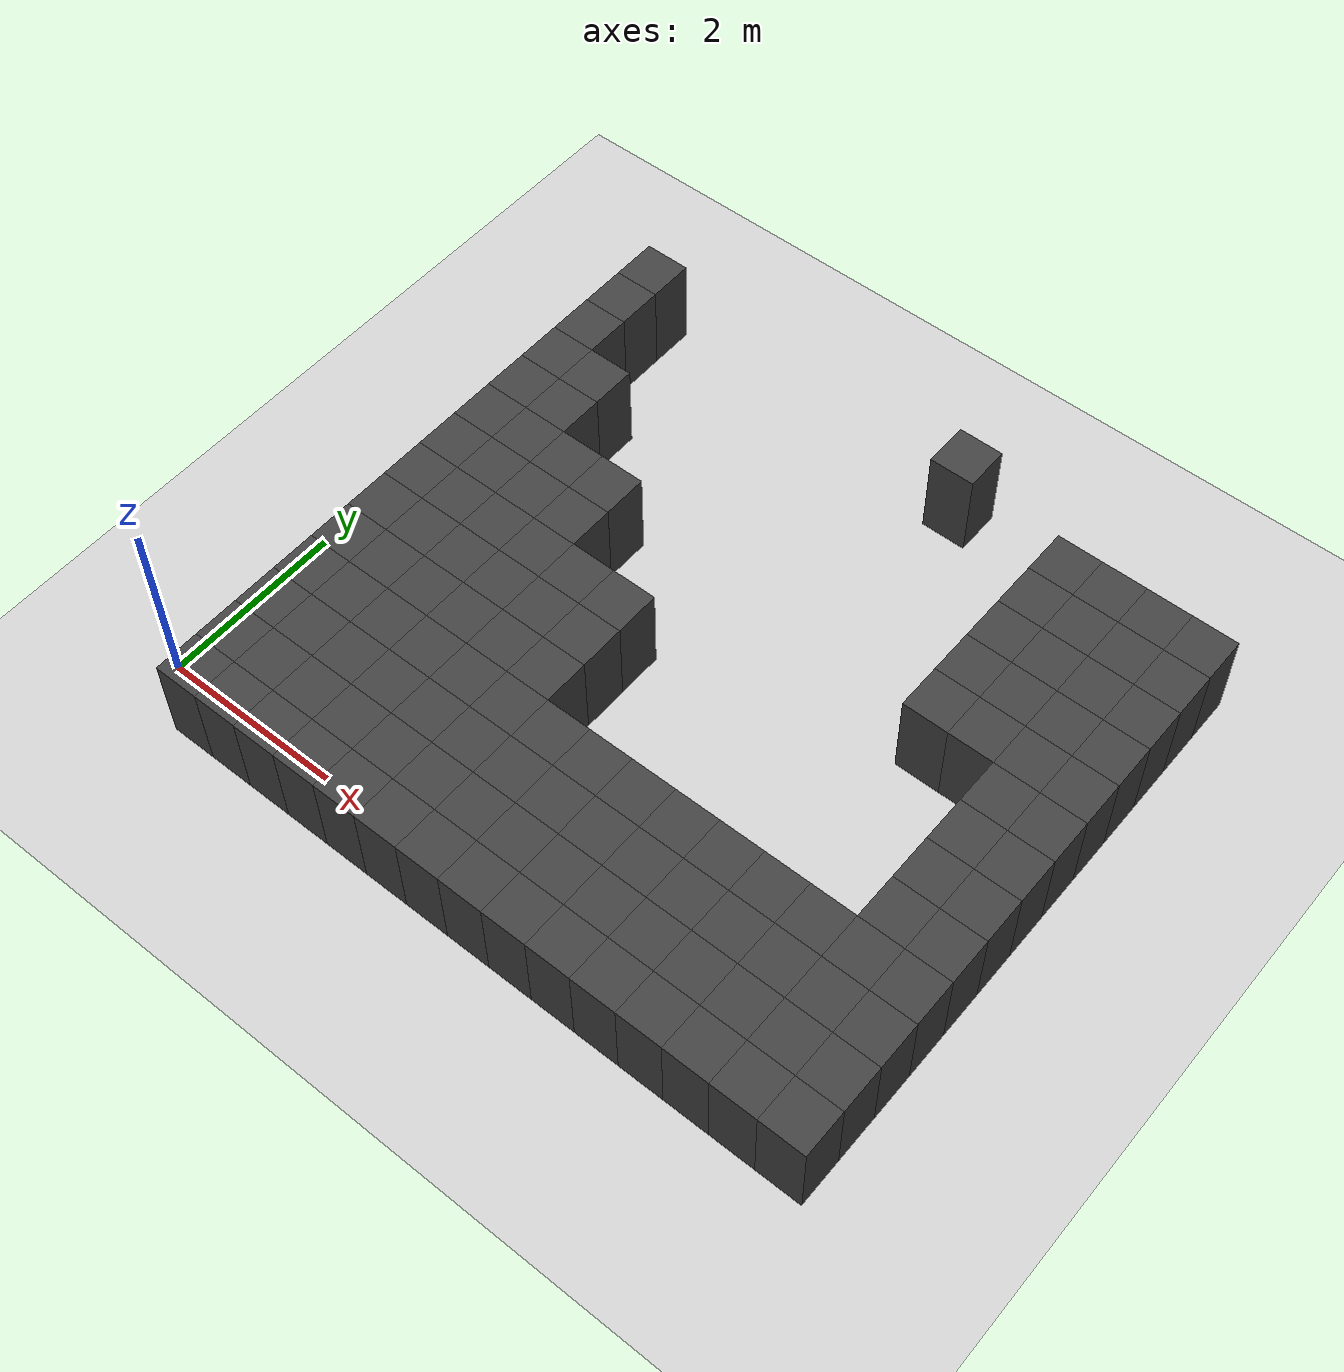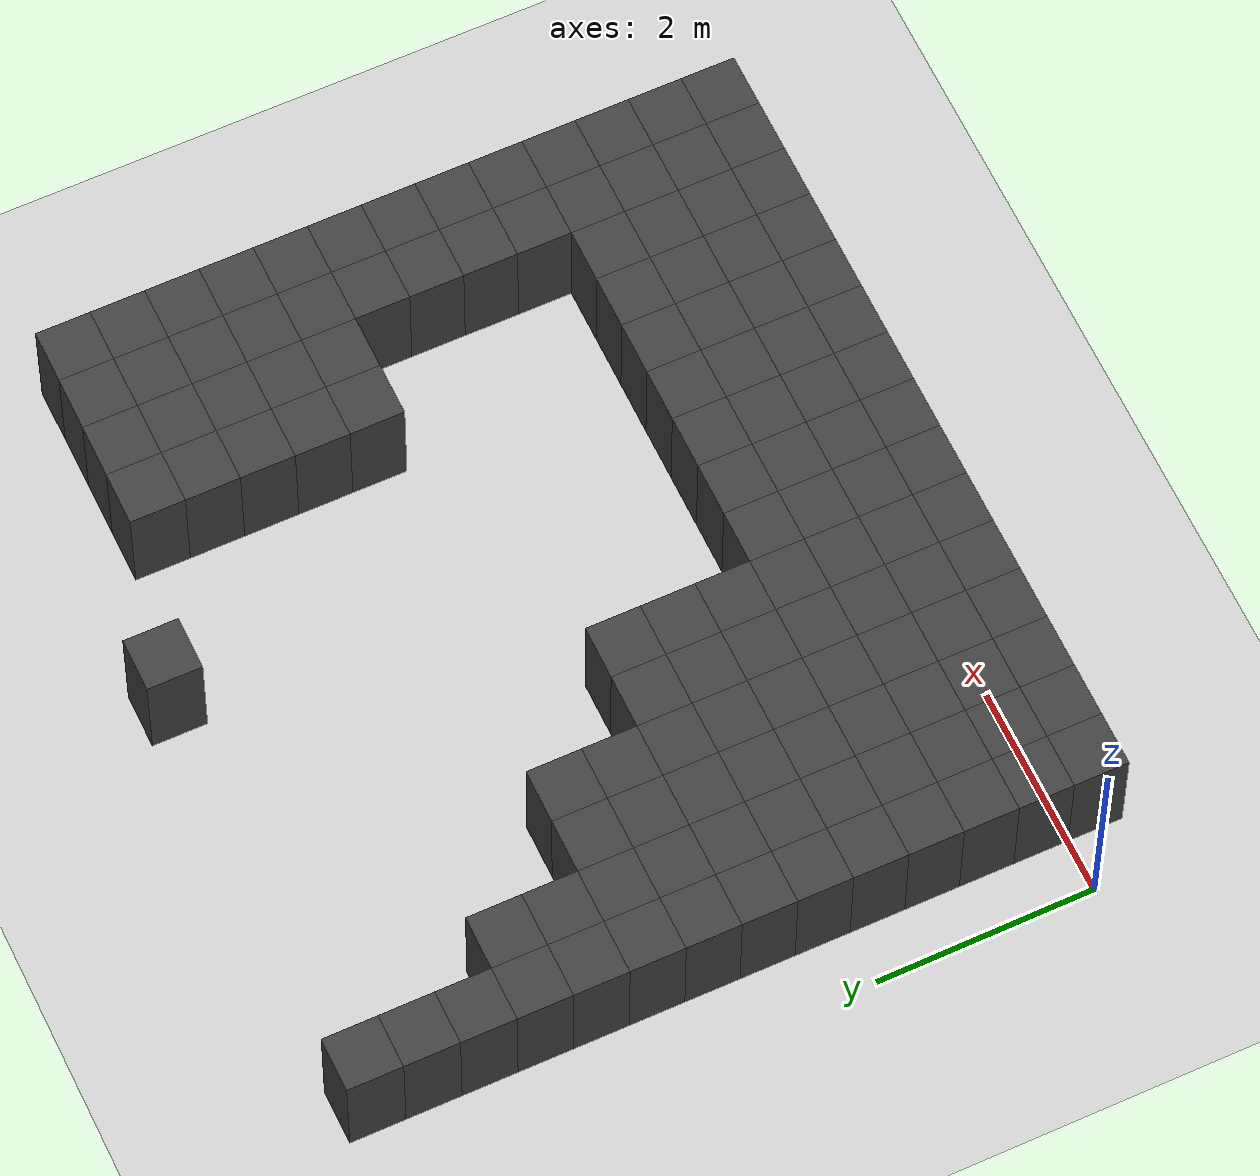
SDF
<sdf version="1.7">
 <world name="map_14510">
  <model name="ground_plane">
   <static>true</static>
   <link name="link">
    <collision name="collision">
     <geometry><plane><normal>0 0 1</normal><size>200 200</size></plane></geometry>
    </collision>
    <visual name="visual">
     <geometry><plane><normal>0 0 1</normal><size>200 200</size></plane></geometry>
     <material><ambient>0.8 0.8 0.8 1</ambient><diffuse>0.8 0.8 0.8 1</diffuse></material>
    </visual>
   </link>
  </model>
  <model name="maze_environment">
   <static>true</static>
   <link name="wall_411">
    <pose>0.750 6.250 0.500 0 0 0</pose>
    <collision name="col"><geometry><box><size>0.5 0.5 1.0</size></box></geometry></collision>
    <visual name="vis">
     <geometry><box><size>0.5 0.5 1.0</size></box></geometry>
     <material><ambient>0.15 0.15 0.15 1</ambient><diffuse>0.25 0.25 0.25 1</diffuse></material>
    </visual>
   </link>
   <link name="wall_412">
    <pose>4.750 6.250 0.500 0 0 0</pose>
    <collision name="col"><geometry><box><size>0.5 0.5 1.0</size></box></geometry></collision>
    <visual name="vis">
     <geometry><box><size>0.5 0.5 1.0</size></box></geometry>
     <material><ambient>0.15 0.15 0.15 1</ambient><diffuse>0.25 0.25 0.25 1</diffuse></material>
    </visual>
   </link>
   <link name="wall_437">
    <pose>0.750 5.750 0.500 0 0 0</pose>
    <collision name="col"><geometry><box><size>0.5 0.5 1.0</size></box></geometry></collision>
    <visual name="vis">
     <geometry><box><size>0.5 0.5 1.0</size></box></geometry>
     <material><ambient>0.15 0.15 0.15 1</ambient><diffuse>0.25 0.25 0.25 1</diffuse></material>
    </visual>
   </link>
   <link name="wall_438">
    <pose>6.250 5.750 0.500 0 0 0</pose>
    <collision name="col"><geometry><box><size>0.5 0.5 1.0</size></box></geometry></collision>
    <visual name="vis">
     <geometry><box><size>0.5 0.5 1.0</size></box></geometry>
     <material><ambient>0.15 0.15 0.15 1</ambient><diffuse>0.25 0.25 0.25 1</diffuse></material>
    </visual>
   </link>
   <link name="wall_439">
    <pose>6.750 5.750 0.500 0 0 0</pose>
    <collision name="col"><geometry><box><size>0.5 0.5 1.0</size></box></geometry></collision>
    <visual name="vis">
     <geometry><box><size>0.5 0.5 1.0</size></box></geometry>
     <material><ambient>0.15 0.15 0.15 1</ambient><diffuse>0.25 0.25 0.25 1</diffuse></material>
    </visual>
   </link>
   <link name="wall_440">
    <pose>7.250 5.750 0.500 0 0 0</pose>
    <collision name="col"><geometry><box><size>0.5 0.5 1.0</size></box></geometry></collision>
    <visual name="vis">
     <geometry><box><size>0.5 0.5 1.0</size></box></geometry>
     <material><ambient>0.15 0.15 0.15 1</ambient><diffuse>0.25 0.25 0.25 1</diffuse></material>
    </visual>
   </link>
   <link name="wall_441">
    <pose>7.750 5.750 0.500 0 0 0</pose>
    <collision name="col"><geometry><box><size>0.5 0.5 1.0</size></box></geometry></collision>
    <visual name="vis">
     <geometry><box><size>0.5 0.5 1.0</size></box></geometry>
     <material><ambient>0.15 0.15 0.15 1</ambient><diffuse>0.25 0.25 0.25 1</diffuse></material>
    </visual>
   </link>
   <link name="wall_470">
    <pose>0.750 5.250 0.500 0 0 0</pose>
    <collision name="col"><geometry><box><size>0.5 0.5 1.0</size></box></geometry></collision>
    <visual name="vis">
     <geometry><box><size>0.5 0.5 1.0</size></box></geometry>
     <material><ambient>0.15 0.15 0.15 1</ambient><diffuse>0.25 0.25 0.25 1</diffuse></material>
    </visual>
   </link>
   <link name="wall_471">
    <pose>6.250 5.250 0.500 0 0 0</pose>
    <collision name="col"><geometry><box><size>0.5 0.5 1.0</size></box></geometry></collision>
    <visual name="vis">
     <geometry><box><size>0.5 0.5 1.0</size></box></geometry>
     <material><ambient>0.15 0.15 0.15 1</ambient><diffuse>0.25 0.25 0.25 1</diffuse></material>
    </visual>
   </link>
   <link name="wall_472">
    <pose>6.750 5.250 0.500 0 0 0</pose>
    <collision name="col"><geometry><box><size>0.5 0.5 1.0</size></box></geometry></collision>
    <visual name="vis">
     <geometry><box><size>0.5 0.5 1.0</size></box></geometry>
     <material><ambient>0.15 0.15 0.15 1</ambient><diffuse>0.25 0.25 0.25 1</diffuse></material>
    </visual>
   </link>
   <link name="wall_473">
    <pose>7.250 5.250 0.500 0 0 0</pose>
    <collision name="col"><geometry><box><size>0.5 0.5 1.0</size></box></geometry></collision>
    <visual name="vis">
     <geometry><box><size>0.5 0.5 1.0</size></box></geometry>
     <material><ambient>0.15 0.15 0.15 1</ambient><diffuse>0.25 0.25 0.25 1</diffuse></material>
    </visual>
   </link>
   <link name="wall_474">
    <pose>7.750 5.250 0.500 0 0 0</pose>
    <collision name="col"><geometry><box><size>0.5 0.5 1.0</size></box></geometry></collision>
    <visual name="vis">
     <geometry><box><size>0.5 0.5 1.0</size></box></geometry>
     <material><ambient>0.15 0.15 0.15 1</ambient><diffuse>0.25 0.25 0.25 1</diffuse></material>
    </visual>
   </link>
   <link name="wall_503">
    <pose>0.750 4.750 0.500 0 0 0</pose>
    <collision name="col"><geometry><box><size>0.5 0.5 1.0</size></box></geometry></collision>
    <visual name="vis">
     <geometry><box><size>0.5 0.5 1.0</size></box></geometry>
     <material><ambient>0.15 0.15 0.15 1</ambient><diffuse>0.25 0.25 0.25 1</diffuse></material>
    </visual>
   </link>
   <link name="wall_504">
    <pose>1.250 4.750 0.500 0 0 0</pose>
    <collision name="col"><geometry><box><size>0.5 0.5 1.0</size></box></geometry></collision>
    <visual name="vis">
     <geometry><box><size>0.5 0.5 1.0</size></box></geometry>
     <material><ambient>0.15 0.15 0.15 1</ambient><diffuse>0.25 0.25 0.25 1</diffuse></material>
    </visual>
   </link>
   <link name="wall_505">
    <pose>6.250 4.750 0.500 0 0 0</pose>
    <collision name="col"><geometry><box><size>0.5 0.5 1.0</size></box></geometry></collision>
    <visual name="vis">
     <geometry><box><size>0.5 0.5 1.0</size></box></geometry>
     <material><ambient>0.15 0.15 0.15 1</ambient><diffuse>0.25 0.25 0.25 1</diffuse></material>
    </visual>
   </link>
   <link name="wall_506">
    <pose>6.750 4.750 0.500 0 0 0</pose>
    <collision name="col"><geometry><box><size>0.5 0.5 1.0</size></box></geometry></collision>
    <visual name="vis">
     <geometry><box><size>0.5 0.5 1.0</size></box></geometry>
     <material><ambient>0.15 0.15 0.15 1</ambient><diffuse>0.25 0.25 0.25 1</diffuse></material>
    </visual>
   </link>
   <link name="wall_507">
    <pose>7.250 4.750 0.500 0 0 0</pose>
    <collision name="col"><geometry><box><size>0.5 0.5 1.0</size></box></geometry></collision>
    <visual name="vis">
     <geometry><box><size>0.5 0.5 1.0</size></box></geometry>
     <material><ambient>0.15 0.15 0.15 1</ambient><diffuse>0.25 0.25 0.25 1</diffuse></material>
    </visual>
   </link>
   <link name="wall_508">
    <pose>7.750 4.750 0.500 0 0 0</pose>
    <collision name="col"><geometry><box><size>0.5 0.5 1.0</size></box></geometry></collision>
    <visual name="vis">
     <geometry><box><size>0.5 0.5 1.0</size></box></geometry>
     <material><ambient>0.15 0.15 0.15 1</ambient><diffuse>0.25 0.25 0.25 1</diffuse></material>
    </visual>
   </link>
   <link name="wall_537">
    <pose>0.750 4.250 0.500 0 0 0</pose>
    <collision name="col"><geometry><box><size>0.5 0.5 1.0</size></box></geometry></collision>
    <visual name="vis">
     <geometry><box><size>0.5 0.5 1.0</size></box></geometry>
     <material><ambient>0.15 0.15 0.15 1</ambient><diffuse>0.25 0.25 0.25 1</diffuse></material>
    </visual>
   </link>
   <link name="wall_538">
    <pose>1.250 4.250 0.500 0 0 0</pose>
    <collision name="col"><geometry><box><size>0.5 0.5 1.0</size></box></geometry></collision>
    <visual name="vis">
     <geometry><box><size>0.5 0.5 1.0</size></box></geometry>
     <material><ambient>0.15 0.15 0.15 1</ambient><diffuse>0.25 0.25 0.25 1</diffuse></material>
    </visual>
   </link>
   <link name="wall_539">
    <pose>6.250 4.250 0.500 0 0 0</pose>
    <collision name="col"><geometry><box><size>0.5 0.5 1.0</size></box></geometry></collision>
    <visual name="vis">
     <geometry><box><size>0.5 0.5 1.0</size></box></geometry>
     <material><ambient>0.15 0.15 0.15 1</ambient><diffuse>0.25 0.25 0.25 1</diffuse></material>
    </visual>
   </link>
   <link name="wall_540">
    <pose>6.750 4.250 0.500 0 0 0</pose>
    <collision name="col"><geometry><box><size>0.5 0.5 1.0</size></box></geometry></collision>
    <visual name="vis">
     <geometry><box><size>0.5 0.5 1.0</size></box></geometry>
     <material><ambient>0.15 0.15 0.15 1</ambient><diffuse>0.25 0.25 0.25 1</diffuse></material>
    </visual>
   </link>
   <link name="wall_541">
    <pose>7.250 4.250 0.500 0 0 0</pose>
    <collision name="col"><geometry><box><size>0.5 0.5 1.0</size></box></geometry></collision>
    <visual name="vis">
     <geometry><box><size>0.5 0.5 1.0</size></box></geometry>
     <material><ambient>0.15 0.15 0.15 1</ambient><diffuse>0.25 0.25 0.25 1</diffuse></material>
    </visual>
   </link>
   <link name="wall_542">
    <pose>7.750 4.250 0.500 0 0 0</pose>
    <collision name="col"><geometry><box><size>0.5 0.5 1.0</size></box></geometry></collision>
    <visual name="vis">
     <geometry><box><size>0.5 0.5 1.0</size></box></geometry>
     <material><ambient>0.15 0.15 0.15 1</ambient><diffuse>0.25 0.25 0.25 1</diffuse></material>
    </visual>
   </link>
   <link name="wall_577">
    <pose>0.750 3.750 0.500 0 0 0</pose>
    <collision name="col"><geometry><box><size>0.5 0.5 1.0</size></box></geometry></collision>
    <visual name="vis">
     <geometry><box><size>0.5 0.5 1.0</size></box></geometry>
     <material><ambient>0.15 0.15 0.15 1</ambient><diffuse>0.25 0.25 0.25 1</diffuse></material>
    </visual>
   </link>
   <link name="wall_578">
    <pose>1.250 3.750 0.500 0 0 0</pose>
    <collision name="col"><geometry><box><size>0.5 0.5 1.0</size></box></geometry></collision>
    <visual name="vis">
     <geometry><box><size>0.5 0.5 1.0</size></box></geometry>
     <material><ambient>0.15 0.15 0.15 1</ambient><diffuse>0.25 0.25 0.25 1</diffuse></material>
    </visual>
   </link>
   <link name="wall_579">
    <pose>1.750 3.750 0.500 0 0 0</pose>
    <collision name="col"><geometry><box><size>0.5 0.5 1.0</size></box></geometry></collision>
    <visual name="vis">
     <geometry><box><size>0.5 0.5 1.0</size></box></geometry>
     <material><ambient>0.15 0.15 0.15 1</ambient><diffuse>0.25 0.25 0.25 1</diffuse></material>
    </visual>
   </link>
   <link name="wall_580">
    <pose>2.250 3.750 0.500 0 0 0</pose>
    <collision name="col"><geometry><box><size>0.5 0.5 1.0</size></box></geometry></collision>
    <visual name="vis">
     <geometry><box><size>0.5 0.5 1.0</size></box></geometry>
     <material><ambient>0.15 0.15 0.15 1</ambient><diffuse>0.25 0.25 0.25 1</diffuse></material>
    </visual>
   </link>
   <link name="wall_581">
    <pose>6.250 3.750 0.500 0 0 0</pose>
    <collision name="col"><geometry><box><size>0.5 0.5 1.0</size></box></geometry></collision>
    <visual name="vis">
     <geometry><box><size>0.5 0.5 1.0</size></box></geometry>
     <material><ambient>0.15 0.15 0.15 1</ambient><diffuse>0.25 0.25 0.25 1</diffuse></material>
    </visual>
   </link>
   <link name="wall_582">
    <pose>6.750 3.750 0.500 0 0 0</pose>
    <collision name="col"><geometry><box><size>0.5 0.5 1.0</size></box></geometry></collision>
    <visual name="vis">
     <geometry><box><size>0.5 0.5 1.0</size></box></geometry>
     <material><ambient>0.15 0.15 0.15 1</ambient><diffuse>0.25 0.25 0.25 1</diffuse></material>
    </visual>
   </link>
   <link name="wall_583">
    <pose>7.250 3.750 0.500 0 0 0</pose>
    <collision name="col"><geometry><box><size>0.5 0.5 1.0</size></box></geometry></collision>
    <visual name="vis">
     <geometry><box><size>0.5 0.5 1.0</size></box></geometry>
     <material><ambient>0.15 0.15 0.15 1</ambient><diffuse>0.25 0.25 0.25 1</diffuse></material>
    </visual>
   </link>
   <link name="wall_584">
    <pose>7.750 3.750 0.500 0 0 0</pose>
    <collision name="col"><geometry><box><size>0.5 0.5 1.0</size></box></geometry></collision>
    <visual name="vis">
     <geometry><box><size>0.5 0.5 1.0</size></box></geometry>
     <material><ambient>0.15 0.15 0.15 1</ambient><diffuse>0.25 0.25 0.25 1</diffuse></material>
    </visual>
   </link>
   <link name="wall_619">
    <pose>0.750 3.250 0.500 0 0 0</pose>
    <collision name="col"><geometry><box><size>0.5 0.5 1.0</size></box></geometry></collision>
    <visual name="vis">
     <geometry><box><size>0.5 0.5 1.0</size></box></geometry>
     <material><ambient>0.15 0.15 0.15 1</ambient><diffuse>0.25 0.25 0.25 1</diffuse></material>
    </visual>
   </link>
   <link name="wall_620">
    <pose>1.250 3.250 0.500 0 0 0</pose>
    <collision name="col"><geometry><box><size>0.5 0.5 1.0</size></box></geometry></collision>
    <visual name="vis">
     <geometry><box><size>0.5 0.5 1.0</size></box></geometry>
     <material><ambient>0.15 0.15 0.15 1</ambient><diffuse>0.25 0.25 0.25 1</diffuse></material>
    </visual>
   </link>
   <link name="wall_621">
    <pose>1.750 3.250 0.500 0 0 0</pose>
    <collision name="col"><geometry><box><size>0.5 0.5 1.0</size></box></geometry></collision>
    <visual name="vis">
     <geometry><box><size>0.5 0.5 1.0</size></box></geometry>
     <material><ambient>0.15 0.15 0.15 1</ambient><diffuse>0.25 0.25 0.25 1</diffuse></material>
    </visual>
   </link>
   <link name="wall_622">
    <pose>2.250 3.250 0.500 0 0 0</pose>
    <collision name="col"><geometry><box><size>0.5 0.5 1.0</size></box></geometry></collision>
    <visual name="vis">
     <geometry><box><size>0.5 0.5 1.0</size></box></geometry>
     <material><ambient>0.15 0.15 0.15 1</ambient><diffuse>0.25 0.25 0.25 1</diffuse></material>
    </visual>
   </link>
   <link name="wall_623">
    <pose>7.250 3.250 0.500 0 0 0</pose>
    <collision name="col"><geometry><box><size>0.5 0.5 1.0</size></box></geometry></collision>
    <visual name="vis">
     <geometry><box><size>0.5 0.5 1.0</size></box></geometry>
     <material><ambient>0.15 0.15 0.15 1</ambient><diffuse>0.25 0.25 0.25 1</diffuse></material>
    </visual>
   </link>
   <link name="wall_624">
    <pose>7.750 3.250 0.500 0 0 0</pose>
    <collision name="col"><geometry><box><size>0.5 0.5 1.0</size></box></geometry></collision>
    <visual name="vis">
     <geometry><box><size>0.5 0.5 1.0</size></box></geometry>
     <material><ambient>0.15 0.15 0.15 1</ambient><diffuse>0.25 0.25 0.25 1</diffuse></material>
    </visual>
   </link>
   <link name="wall_659">
    <pose>0.750 2.750 0.500 0 0 0</pose>
    <collision name="col"><geometry><box><size>0.5 0.5 1.0</size></box></geometry></collision>
    <visual name="vis">
     <geometry><box><size>0.5 0.5 1.0</size></box></geometry>
     <material><ambient>0.15 0.15 0.15 1</ambient><diffuse>0.25 0.25 0.25 1</diffuse></material>
    </visual>
   </link>
   <link name="wall_660">
    <pose>1.250 2.750 0.500 0 0 0</pose>
    <collision name="col"><geometry><box><size>0.5 0.5 1.0</size></box></geometry></collision>
    <visual name="vis">
     <geometry><box><size>0.5 0.5 1.0</size></box></geometry>
     <material><ambient>0.15 0.15 0.15 1</ambient><diffuse>0.25 0.25 0.25 1</diffuse></material>
    </visual>
   </link>
   <link name="wall_661">
    <pose>1.750 2.750 0.500 0 0 0</pose>
    <collision name="col"><geometry><box><size>0.5 0.5 1.0</size></box></geometry></collision>
    <visual name="vis">
     <geometry><box><size>0.5 0.5 1.0</size></box></geometry>
     <material><ambient>0.15 0.15 0.15 1</ambient><diffuse>0.25 0.25 0.25 1</diffuse></material>
    </visual>
   </link>
   <link name="wall_662">
    <pose>2.250 2.750 0.500 0 0 0</pose>
    <collision name="col"><geometry><box><size>0.5 0.5 1.0</size></box></geometry></collision>
    <visual name="vis">
     <geometry><box><size>0.5 0.5 1.0</size></box></geometry>
     <material><ambient>0.15 0.15 0.15 1</ambient><diffuse>0.25 0.25 0.25 1</diffuse></material>
    </visual>
   </link>
   <link name="wall_663">
    <pose>2.750 2.750 0.500 0 0 0</pose>
    <collision name="col"><geometry><box><size>0.5 0.5 1.0</size></box></geometry></collision>
    <visual name="vis">
     <geometry><box><size>0.5 0.5 1.0</size></box></geometry>
     <material><ambient>0.15 0.15 0.15 1</ambient><diffuse>0.25 0.25 0.25 1</diffuse></material>
    </visual>
   </link>
   <link name="wall_664">
    <pose>3.250 2.750 0.500 0 0 0</pose>
    <collision name="col"><geometry><box><size>0.5 0.5 1.0</size></box></geometry></collision>
    <visual name="vis">
     <geometry><box><size>0.5 0.5 1.0</size></box></geometry>
     <material><ambient>0.15 0.15 0.15 1</ambient><diffuse>0.25 0.25 0.25 1</diffuse></material>
    </visual>
   </link>
   <link name="wall_665">
    <pose>7.250 2.750 0.500 0 0 0</pose>
    <collision name="col"><geometry><box><size>0.5 0.5 1.0</size></box></geometry></collision>
    <visual name="vis">
     <geometry><box><size>0.5 0.5 1.0</size></box></geometry>
     <material><ambient>0.15 0.15 0.15 1</ambient><diffuse>0.25 0.25 0.25 1</diffuse></material>
    </visual>
   </link>
   <link name="wall_666">
    <pose>7.750 2.750 0.500 0 0 0</pose>
    <collision name="col"><geometry><box><size>0.5 0.5 1.0</size></box></geometry></collision>
    <visual name="vis">
     <geometry><box><size>0.5 0.5 1.0</size></box></geometry>
     <material><ambient>0.15 0.15 0.15 1</ambient><diffuse>0.25 0.25 0.25 1</diffuse></material>
    </visual>
   </link>
   <link name="wall_697">
    <pose>0.750 2.250 0.500 0 0 0</pose>
    <collision name="col"><geometry><box><size>0.5 0.5 1.0</size></box></geometry></collision>
    <visual name="vis">
     <geometry><box><size>0.5 0.5 1.0</size></box></geometry>
     <material><ambient>0.15 0.15 0.15 1</ambient><diffuse>0.25 0.25 0.25 1</diffuse></material>
    </visual>
   </link>
   <link name="wall_698">
    <pose>1.250 2.250 0.500 0 0 0</pose>
    <collision name="col"><geometry><box><size>0.5 0.5 1.0</size></box></geometry></collision>
    <visual name="vis">
     <geometry><box><size>0.5 0.5 1.0</size></box></geometry>
     <material><ambient>0.15 0.15 0.15 1</ambient><diffuse>0.25 0.25 0.25 1</diffuse></material>
    </visual>
   </link>
   <link name="wall_699">
    <pose>1.750 2.250 0.500 0 0 0</pose>
    <collision name="col"><geometry><box><size>0.5 0.5 1.0</size></box></geometry></collision>
    <visual name="vis">
     <geometry><box><size>0.5 0.5 1.0</size></box></geometry>
     <material><ambient>0.15 0.15 0.15 1</ambient><diffuse>0.25 0.25 0.25 1</diffuse></material>
    </visual>
   </link>
   <link name="wall_700">
    <pose>2.250 2.250 0.500 0 0 0</pose>
    <collision name="col"><geometry><box><size>0.5 0.5 1.0</size></box></geometry></collision>
    <visual name="vis">
     <geometry><box><size>0.5 0.5 1.0</size></box></geometry>
     <material><ambient>0.15 0.15 0.15 1</ambient><diffuse>0.25 0.25 0.25 1</diffuse></material>
    </visual>
   </link>
   <link name="wall_701">
    <pose>2.750 2.250 0.500 0 0 0</pose>
    <collision name="col"><geometry><box><size>0.5 0.5 1.0</size></box></geometry></collision>
    <visual name="vis">
     <geometry><box><size>0.5 0.5 1.0</size></box></geometry>
     <material><ambient>0.15 0.15 0.15 1</ambient><diffuse>0.25 0.25 0.25 1</diffuse></material>
    </visual>
   </link>
   <link name="wall_702">
    <pose>3.250 2.250 0.500 0 0 0</pose>
    <collision name="col"><geometry><box><size>0.5 0.5 1.0</size></box></geometry></collision>
    <visual name="vis">
     <geometry><box><size>0.5 0.5 1.0</size></box></geometry>
     <material><ambient>0.15 0.15 0.15 1</ambient><diffuse>0.25 0.25 0.25 1</diffuse></material>
    </visual>
   </link>
   <link name="wall_703">
    <pose>7.250 2.250 0.500 0 0 0</pose>
    <collision name="col"><geometry><box><size>0.5 0.5 1.0</size></box></geometry></collision>
    <visual name="vis">
     <geometry><box><size>0.5 0.5 1.0</size></box></geometry>
     <material><ambient>0.15 0.15 0.15 1</ambient><diffuse>0.25 0.25 0.25 1</diffuse></material>
    </visual>
   </link>
   <link name="wall_704">
    <pose>7.750 2.250 0.500 0 0 0</pose>
    <collision name="col"><geometry><box><size>0.5 0.5 1.0</size></box></geometry></collision>
    <visual name="vis">
     <geometry><box><size>0.5 0.5 1.0</size></box></geometry>
     <material><ambient>0.15 0.15 0.15 1</ambient><diffuse>0.25 0.25 0.25 1</diffuse></material>
    </visual>
   </link>
   <link name="wall_735">
    <pose>0.750 1.750 0.500 0 0 0</pose>
    <collision name="col"><geometry><box><size>0.5 0.5 1.0</size></box></geometry></collision>
    <visual name="vis">
     <geometry><box><size>0.5 0.5 1.0</size></box></geometry>
     <material><ambient>0.15 0.15 0.15 1</ambient><diffuse>0.25 0.25 0.25 1</diffuse></material>
    </visual>
   </link>
   <link name="wall_736">
    <pose>1.250 1.750 0.500 0 0 0</pose>
    <collision name="col"><geometry><box><size>0.5 0.5 1.0</size></box></geometry></collision>
    <visual name="vis">
     <geometry><box><size>0.5 0.5 1.0</size></box></geometry>
     <material><ambient>0.15 0.15 0.15 1</ambient><diffuse>0.25 0.25 0.25 1</diffuse></material>
    </visual>
   </link>
   <link name="wall_737">
    <pose>1.750 1.750 0.500 0 0 0</pose>
    <collision name="col"><geometry><box><size>0.5 0.5 1.0</size></box></geometry></collision>
    <visual name="vis">
     <geometry><box><size>0.5 0.5 1.0</size></box></geometry>
     <material><ambient>0.15 0.15 0.15 1</ambient><diffuse>0.25 0.25 0.25 1</diffuse></material>
    </visual>
   </link>
   <link name="wall_738">
    <pose>2.250 1.750 0.500 0 0 0</pose>
    <collision name="col"><geometry><box><size>0.5 0.5 1.0</size></box></geometry></collision>
    <visual name="vis">
     <geometry><box><size>0.5 0.5 1.0</size></box></geometry>
     <material><ambient>0.15 0.15 0.15 1</ambient><diffuse>0.25 0.25 0.25 1</diffuse></material>
    </visual>
   </link>
   <link name="wall_739">
    <pose>2.750 1.750 0.500 0 0 0</pose>
    <collision name="col"><geometry><box><size>0.5 0.5 1.0</size></box></geometry></collision>
    <visual name="vis">
     <geometry><box><size>0.5 0.5 1.0</size></box></geometry>
     <material><ambient>0.15 0.15 0.15 1</ambient><diffuse>0.25 0.25 0.25 1</diffuse></material>
    </visual>
   </link>
   <link name="wall_740">
    <pose>3.250 1.750 0.500 0 0 0</pose>
    <collision name="col"><geometry><box><size>0.5 0.5 1.0</size></box></geometry></collision>
    <visual name="vis">
     <geometry><box><size>0.5 0.5 1.0</size></box></geometry>
     <material><ambient>0.15 0.15 0.15 1</ambient><diffuse>0.25 0.25 0.25 1</diffuse></material>
    </visual>
   </link>
   <link name="wall_741">
    <pose>7.250 1.750 0.500 0 0 0</pose>
    <collision name="col"><geometry><box><size>0.5 0.5 1.0</size></box></geometry></collision>
    <visual name="vis">
     <geometry><box><size>0.5 0.5 1.0</size></box></geometry>
     <material><ambient>0.15 0.15 0.15 1</ambient><diffuse>0.25 0.25 0.25 1</diffuse></material>
    </visual>
   </link>
   <link name="wall_742">
    <pose>7.750 1.750 0.500 0 0 0</pose>
    <collision name="col"><geometry><box><size>0.5 0.5 1.0</size></box></geometry></collision>
    <visual name="vis">
     <geometry><box><size>0.5 0.5 1.0</size></box></geometry>
     <material><ambient>0.15 0.15 0.15 1</ambient><diffuse>0.25 0.25 0.25 1</diffuse></material>
    </visual>
   </link>
   <link name="wall_765">
    <pose>0.750 1.250 0.500 0 0 0</pose>
    <collision name="col"><geometry><box><size>0.5 0.5 1.0</size></box></geometry></collision>
    <visual name="vis">
     <geometry><box><size>0.5 0.5 1.0</size></box></geometry>
     <material><ambient>0.15 0.15 0.15 1</ambient><diffuse>0.25 0.25 0.25 1</diffuse></material>
    </visual>
   </link>
   <link name="wall_766">
    <pose>1.250 1.250 0.500 0 0 0</pose>
    <collision name="col"><geometry><box><size>0.5 0.5 1.0</size></box></geometry></collision>
    <visual name="vis">
     <geometry><box><size>0.5 0.5 1.0</size></box></geometry>
     <material><ambient>0.15 0.15 0.15 1</ambient><diffuse>0.25 0.25 0.25 1</diffuse></material>
    </visual>
   </link>
   <link name="wall_767">
    <pose>1.750 1.250 0.500 0 0 0</pose>
    <collision name="col"><geometry><box><size>0.5 0.5 1.0</size></box></geometry></collision>
    <visual name="vis">
     <geometry><box><size>0.5 0.5 1.0</size></box></geometry>
     <material><ambient>0.15 0.15 0.15 1</ambient><diffuse>0.25 0.25 0.25 1</diffuse></material>
    </visual>
   </link>
   <link name="wall_768">
    <pose>2.250 1.250 0.500 0 0 0</pose>
    <collision name="col"><geometry><box><size>0.5 0.5 1.0</size></box></geometry></collision>
    <visual name="vis">
     <geometry><box><size>0.5 0.5 1.0</size></box></geometry>
     <material><ambient>0.15 0.15 0.15 1</ambient><diffuse>0.25 0.25 0.25 1</diffuse></material>
    </visual>
   </link>
   <link name="wall_769">
    <pose>2.750 1.250 0.500 0 0 0</pose>
    <collision name="col"><geometry><box><size>0.5 0.5 1.0</size></box></geometry></collision>
    <visual name="vis">
     <geometry><box><size>0.5 0.5 1.0</size></box></geometry>
     <material><ambient>0.15 0.15 0.15 1</ambient><diffuse>0.25 0.25 0.25 1</diffuse></material>
    </visual>
   </link>
   <link name="wall_770">
    <pose>3.250 1.250 0.500 0 0 0</pose>
    <collision name="col"><geometry><box><size>0.5 0.5 1.0</size></box></geometry></collision>
    <visual name="vis">
     <geometry><box><size>0.5 0.5 1.0</size></box></geometry>
     <material><ambient>0.15 0.15 0.15 1</ambient><diffuse>0.25 0.25 0.25 1</diffuse></material>
    </visual>
   </link>
   <link name="wall_771">
    <pose>3.750 1.250 0.500 0 0 0</pose>
    <collision name="col"><geometry><box><size>0.5 0.5 1.0</size></box></geometry></collision>
    <visual name="vis">
     <geometry><box><size>0.5 0.5 1.0</size></box></geometry>
     <material><ambient>0.15 0.15 0.15 1</ambient><diffuse>0.25 0.25 0.25 1</diffuse></material>
    </visual>
   </link>
   <link name="wall_772">
    <pose>4.250 1.250 0.500 0 0 0</pose>
    <collision name="col"><geometry><box><size>0.5 0.5 1.0</size></box></geometry></collision>
    <visual name="vis">
     <geometry><box><size>0.5 0.5 1.0</size></box></geometry>
     <material><ambient>0.15 0.15 0.15 1</ambient><diffuse>0.25 0.25 0.25 1</diffuse></material>
    </visual>
   </link>
   <link name="wall_773">
    <pose>4.750 1.250 0.500 0 0 0</pose>
    <collision name="col"><geometry><box><size>0.5 0.5 1.0</size></box></geometry></collision>
    <visual name="vis">
     <geometry><box><size>0.5 0.5 1.0</size></box></geometry>
     <material><ambient>0.15 0.15 0.15 1</ambient><diffuse>0.25 0.25 0.25 1</diffuse></material>
    </visual>
   </link>
   <link name="wall_774">
    <pose>5.250 1.250 0.500 0 0 0</pose>
    <collision name="col"><geometry><box><size>0.5 0.5 1.0</size></box></geometry></collision>
    <visual name="vis">
     <geometry><box><size>0.5 0.5 1.0</size></box></geometry>
     <material><ambient>0.15 0.15 0.15 1</ambient><diffuse>0.25 0.25 0.25 1</diffuse></material>
    </visual>
   </link>
   <link name="wall_775">
    <pose>5.750 1.250 0.500 0 0 0</pose>
    <collision name="col"><geometry><box><size>0.5 0.5 1.0</size></box></geometry></collision>
    <visual name="vis">
     <geometry><box><size>0.5 0.5 1.0</size></box></geometry>
     <material><ambient>0.15 0.15 0.15 1</ambient><diffuse>0.25 0.25 0.25 1</diffuse></material>
    </visual>
   </link>
   <link name="wall_776">
    <pose>6.250 1.250 0.500 0 0 0</pose>
    <collision name="col"><geometry><box><size>0.5 0.5 1.0</size></box></geometry></collision>
    <visual name="vis">
     <geometry><box><size>0.5 0.5 1.0</size></box></geometry>
     <material><ambient>0.15 0.15 0.15 1</ambient><diffuse>0.25 0.25 0.25 1</diffuse></material>
    </visual>
   </link>
   <link name="wall_777">
    <pose>6.750 1.250 0.500 0 0 0</pose>
    <collision name="col"><geometry><box><size>0.5 0.5 1.0</size></box></geometry></collision>
    <visual name="vis">
     <geometry><box><size>0.5 0.5 1.0</size></box></geometry>
     <material><ambient>0.15 0.15 0.15 1</ambient><diffuse>0.25 0.25 0.25 1</diffuse></material>
    </visual>
   </link>
   <link name="wall_778">
    <pose>7.250 1.250 0.500 0 0 0</pose>
    <collision name="col"><geometry><box><size>0.5 0.5 1.0</size></box></geometry></collision>
    <visual name="vis">
     <geometry><box><size>0.5 0.5 1.0</size></box></geometry>
     <material><ambient>0.15 0.15 0.15 1</ambient><diffuse>0.25 0.25 0.25 1</diffuse></material>
    </visual>
   </link>
   <link name="wall_779">
    <pose>7.750 1.250 0.500 0 0 0</pose>
    <collision name="col"><geometry><box><size>0.5 0.5 1.0</size></box></geometry></collision>
    <visual name="vis">
     <geometry><box><size>0.5 0.5 1.0</size></box></geometry>
     <material><ambient>0.15 0.15 0.15 1</ambient><diffuse>0.25 0.25 0.25 1</diffuse></material>
    </visual>
   </link>
   <link name="wall_802">
    <pose>0.750 0.750 0.500 0 0 0</pose>
    <collision name="col"><geometry><box><size>0.5 0.5 1.0</size></box></geometry></collision>
    <visual name="vis">
     <geometry><box><size>0.5 0.5 1.0</size></box></geometry>
     <material><ambient>0.15 0.15 0.15 1</ambient><diffuse>0.25 0.25 0.25 1</diffuse></material>
    </visual>
   </link>
   <link name="wall_803">
    <pose>1.250 0.750 0.500 0 0 0</pose>
    <collision name="col"><geometry><box><size>0.5 0.5 1.0</size></box></geometry></collision>
    <visual name="vis">
     <geometry><box><size>0.5 0.5 1.0</size></box></geometry>
     <material><ambient>0.15 0.15 0.15 1</ambient><diffuse>0.25 0.25 0.25 1</diffuse></material>
    </visual>
   </link>
   <link name="wall_804">
    <pose>1.750 0.750 0.500 0 0 0</pose>
    <collision name="col"><geometry><box><size>0.5 0.5 1.0</size></box></geometry></collision>
    <visual name="vis">
     <geometry><box><size>0.5 0.5 1.0</size></box></geometry>
     <material><ambient>0.15 0.15 0.15 1</ambient><diffuse>0.25 0.25 0.25 1</diffuse></material>
    </visual>
   </link>
   <link name="wall_805">
    <pose>2.250 0.750 0.500 0 0 0</pose>
    <collision name="col"><geometry><box><size>0.5 0.5 1.0</size></box></geometry></collision>
    <visual name="vis">
     <geometry><box><size>0.5 0.5 1.0</size></box></geometry>
     <material><ambient>0.15 0.15 0.15 1</ambient><diffuse>0.25 0.25 0.25 1</diffuse></material>
    </visual>
   </link>
   <link name="wall_806">
    <pose>2.750 0.750 0.500 0 0 0</pose>
    <collision name="col"><geometry><box><size>0.5 0.5 1.0</size></box></geometry></collision>
    <visual name="vis">
     <geometry><box><size>0.5 0.5 1.0</size></box></geometry>
     <material><ambient>0.15 0.15 0.15 1</ambient><diffuse>0.25 0.25 0.25 1</diffuse></material>
    </visual>
   </link>
   <link name="wall_807">
    <pose>3.250 0.750 0.500 0 0 0</pose>
    <collision name="col"><geometry><box><size>0.5 0.5 1.0</size></box></geometry></collision>
    <visual name="vis">
     <geometry><box><size>0.5 0.5 1.0</size></box></geometry>
     <material><ambient>0.15 0.15 0.15 1</ambient><diffuse>0.25 0.25 0.25 1</diffuse></material>
    </visual>
   </link>
   <link name="wall_808">
    <pose>3.750 0.750 0.500 0 0 0</pose>
    <collision name="col"><geometry><box><size>0.5 0.5 1.0</size></box></geometry></collision>
    <visual name="vis">
     <geometry><box><size>0.5 0.5 1.0</size></box></geometry>
     <material><ambient>0.15 0.15 0.15 1</ambient><diffuse>0.25 0.25 0.25 1</diffuse></material>
    </visual>
   </link>
   <link name="wall_809">
    <pose>4.250 0.750 0.500 0 0 0</pose>
    <collision name="col"><geometry><box><size>0.5 0.5 1.0</size></box></geometry></collision>
    <visual name="vis">
     <geometry><box><size>0.5 0.5 1.0</size></box></geometry>
     <material><ambient>0.15 0.15 0.15 1</ambient><diffuse>0.25 0.25 0.25 1</diffuse></material>
    </visual>
   </link>
   <link name="wall_810">
    <pose>4.750 0.750 0.500 0 0 0</pose>
    <collision name="col"><geometry><box><size>0.5 0.5 1.0</size></box></geometry></collision>
    <visual name="vis">
     <geometry><box><size>0.5 0.5 1.0</size></box></geometry>
     <material><ambient>0.15 0.15 0.15 1</ambient><diffuse>0.25 0.25 0.25 1</diffuse></material>
    </visual>
   </link>
   <link name="wall_811">
    <pose>5.250 0.750 0.500 0 0 0</pose>
    <collision name="col"><geometry><box><size>0.5 0.5 1.0</size></box></geometry></collision>
    <visual name="vis">
     <geometry><box><size>0.5 0.5 1.0</size></box></geometry>
     <material><ambient>0.15 0.15 0.15 1</ambient><diffuse>0.25 0.25 0.25 1</diffuse></material>
    </visual>
   </link>
   <link name="wall_812">
    <pose>5.750 0.750 0.500 0 0 0</pose>
    <collision name="col"><geometry><box><size>0.5 0.5 1.0</size></box></geometry></collision>
    <visual name="vis">
     <geometry><box><size>0.5 0.5 1.0</size></box></geometry>
     <material><ambient>0.15 0.15 0.15 1</ambient><diffuse>0.25 0.25 0.25 1</diffuse></material>
    </visual>
   </link>
   <link name="wall_813">
    <pose>6.250 0.750 0.500 0 0 0</pose>
    <collision name="col"><geometry><box><size>0.5 0.5 1.0</size></box></geometry></collision>
    <visual name="vis">
     <geometry><box><size>0.5 0.5 1.0</size></box></geometry>
     <material><ambient>0.15 0.15 0.15 1</ambient><diffuse>0.25 0.25 0.25 1</diffuse></material>
    </visual>
   </link>
   <link name="wall_814">
    <pose>6.750 0.750 0.500 0 0 0</pose>
    <collision name="col"><geometry><box><size>0.5 0.5 1.0</size></box></geometry></collision>
    <visual name="vis">
     <geometry><box><size>0.5 0.5 1.0</size></box></geometry>
     <material><ambient>0.15 0.15 0.15 1</ambient><diffuse>0.25 0.25 0.25 1</diffuse></material>
    </visual>
   </link>
   <link name="wall_815">
    <pose>7.250 0.750 0.500 0 0 0</pose>
    <collision name="col"><geometry><box><size>0.5 0.5 1.0</size></box></geometry></collision>
    <visual name="vis">
     <geometry><box><size>0.5 0.5 1.0</size></box></geometry>
     <material><ambient>0.15 0.15 0.15 1</ambient><diffuse>0.25 0.25 0.25 1</diffuse></material>
    </visual>
   </link>
   <link name="wall_816">
    <pose>7.750 0.750 0.500 0 0 0</pose>
    <collision name="col"><geometry><box><size>0.5 0.5 1.0</size></box></geometry></collision>
    <visual name="vis">
     <geometry><box><size>0.5 0.5 1.0</size></box></geometry>
     <material><ambient>0.15 0.15 0.15 1</ambient><diffuse>0.25 0.25 0.25 1</diffuse></material>
    </visual>
   </link>
   <link name="wall_839">
    <pose>0.750 0.250 0.500 0 0 0</pose>
    <collision name="col"><geometry><box><size>0.5 0.5 1.0</size></box></geometry></collision>
    <visual name="vis">
     <geometry><box><size>0.5 0.5 1.0</size></box></geometry>
     <material><ambient>0.15 0.15 0.15 1</ambient><diffuse>0.25 0.25 0.25 1</diffuse></material>
    </visual>
   </link>
   <link name="wall_840">
    <pose>1.250 0.250 0.500 0 0 0</pose>
    <collision name="col"><geometry><box><size>0.5 0.5 1.0</size></box></geometry></collision>
    <visual name="vis">
     <geometry><box><size>0.5 0.5 1.0</size></box></geometry>
     <material><ambient>0.15 0.15 0.15 1</ambient><diffuse>0.25 0.25 0.25 1</diffuse></material>
    </visual>
   </link>
   <link name="wall_841">
    <pose>1.750 0.250 0.500 0 0 0</pose>
    <collision name="col"><geometry><box><size>0.5 0.5 1.0</size></box></geometry></collision>
    <visual name="vis">
     <geometry><box><size>0.5 0.5 1.0</size></box></geometry>
     <material><ambient>0.15 0.15 0.15 1</ambient><diffuse>0.25 0.25 0.25 1</diffuse></material>
    </visual>
   </link>
   <link name="wall_842">
    <pose>2.250 0.250 0.500 0 0 0</pose>
    <collision name="col"><geometry><box><size>0.5 0.5 1.0</size></box></geometry></collision>
    <visual name="vis">
     <geometry><box><size>0.5 0.5 1.0</size></box></geometry>
     <material><ambient>0.15 0.15 0.15 1</ambient><diffuse>0.25 0.25 0.25 1</diffuse></material>
    </visual>
   </link>
   <link name="wall_843">
    <pose>2.750 0.250 0.500 0 0 0</pose>
    <collision name="col"><geometry><box><size>0.5 0.5 1.0</size></box></geometry></collision>
    <visual name="vis">
     <geometry><box><size>0.5 0.5 1.0</size></box></geometry>
     <material><ambient>0.15 0.15 0.15 1</ambient><diffuse>0.25 0.25 0.25 1</diffuse></material>
    </visual>
   </link>
   <link name="wall_844">
    <pose>3.250 0.250 0.500 0 0 0</pose>
    <collision name="col"><geometry><box><size>0.5 0.5 1.0</size></box></geometry></collision>
    <visual name="vis">
     <geometry><box><size>0.5 0.5 1.0</size></box></geometry>
     <material><ambient>0.15 0.15 0.15 1</ambient><diffuse>0.25 0.25 0.25 1</diffuse></material>
    </visual>
   </link>
   <link name="wall_845">
    <pose>3.750 0.250 0.500 0 0 0</pose>
    <collision name="col"><geometry><box><size>0.5 0.5 1.0</size></box></geometry></collision>
    <visual name="vis">
     <geometry><box><size>0.5 0.5 1.0</size></box></geometry>
     <material><ambient>0.15 0.15 0.15 1</ambient><diffuse>0.25 0.25 0.25 1</diffuse></material>
    </visual>
   </link>
   <link name="wall_846">
    <pose>4.250 0.250 0.500 0 0 0</pose>
    <collision name="col"><geometry><box><size>0.5 0.5 1.0</size></box></geometry></collision>
    <visual name="vis">
     <geometry><box><size>0.5 0.5 1.0</size></box></geometry>
     <material><ambient>0.15 0.15 0.15 1</ambient><diffuse>0.25 0.25 0.25 1</diffuse></material>
    </visual>
   </link>
   <link name="wall_847">
    <pose>4.750 0.250 0.500 0 0 0</pose>
    <collision name="col"><geometry><box><size>0.5 0.5 1.0</size></box></geometry></collision>
    <visual name="vis">
     <geometry><box><size>0.5 0.5 1.0</size></box></geometry>
     <material><ambient>0.15 0.15 0.15 1</ambient><diffuse>0.25 0.25 0.25 1</diffuse></material>
    </visual>
   </link>
   <link name="wall_848">
    <pose>5.250 0.250 0.500 0 0 0</pose>
    <collision name="col"><geometry><box><size>0.5 0.5 1.0</size></box></geometry></collision>
    <visual name="vis">
     <geometry><box><size>0.5 0.5 1.0</size></box></geometry>
     <material><ambient>0.15 0.15 0.15 1</ambient><diffuse>0.25 0.25 0.25 1</diffuse></material>
    </visual>
   </link>
   <link name="wall_849">
    <pose>5.750 0.250 0.500 0 0 0</pose>
    <collision name="col"><geometry><box><size>0.5 0.5 1.0</size></box></geometry></collision>
    <visual name="vis">
     <geometry><box><size>0.5 0.5 1.0</size></box></geometry>
     <material><ambient>0.15 0.15 0.15 1</ambient><diffuse>0.25 0.25 0.25 1</diffuse></material>
    </visual>
   </link>
   <link name="wall_850">
    <pose>6.250 0.250 0.500 0 0 0</pose>
    <collision name="col"><geometry><box><size>0.5 0.5 1.0</size></box></geometry></collision>
    <visual name="vis">
     <geometry><box><size>0.5 0.5 1.0</size></box></geometry>
     <material><ambient>0.15 0.15 0.15 1</ambient><diffuse>0.25 0.25 0.25 1</diffuse></material>
    </visual>
   </link>
   <link name="wall_851">
    <pose>6.750 0.250 0.500 0 0 0</pose>
    <collision name="col"><geometry><box><size>0.5 0.5 1.0</size></box></geometry></collision>
    <visual name="vis">
     <geometry><box><size>0.5 0.5 1.0</size></box></geometry>
     <material><ambient>0.15 0.15 0.15 1</ambient><diffuse>0.25 0.25 0.25 1</diffuse></material>
    </visual>
   </link>
   <link name="wall_852">
    <pose>7.250 0.250 0.500 0 0 0</pose>
    <collision name="col"><geometry><box><size>0.5 0.5 1.0</size></box></geometry></collision>
    <visual name="vis">
     <geometry><box><size>0.5 0.5 1.0</size></box></geometry>
     <material><ambient>0.15 0.15 0.15 1</ambient><diffuse>0.25 0.25 0.25 1</diffuse></material>
    </visual>
   </link>
   <link name="wall_853">
    <pose>7.750 0.250 0.500 0 0 0</pose>
    <collision name="col"><geometry><box><size>0.5 0.5 1.0</size></box></geometry></collision>
    <visual name="vis">
     <geometry><box><size>0.5 0.5 1.0</size></box></geometry>
     <material><ambient>0.15 0.15 0.15 1</ambient><diffuse>0.25 0.25 0.25 1</diffuse></material>
    </visual>
   </link>
   <link name="wall_880">
    <pose>0.750 -0.250 0.500 0 0 0</pose>
    <collision name="col"><geometry><box><size>0.5 0.5 1.0</size></box></geometry></collision>
    <visual name="vis">
     <geometry><box><size>0.5 0.5 1.0</size></box></geometry>
     <material><ambient>0.15 0.15 0.15 1</ambient><diffuse>0.25 0.25 0.25 1</diffuse></material>
    </visual>
   </link>
   <link name="wall_881">
    <pose>1.250 -0.250 0.500 0 0 0</pose>
    <collision name="col"><geometry><box><size>0.5 0.5 1.0</size></box></geometry></collision>
    <visual name="vis">
     <geometry><box><size>0.5 0.5 1.0</size></box></geometry>
     <material><ambient>0.15 0.15 0.15 1</ambient><diffuse>0.25 0.25 0.25 1</diffuse></material>
    </visual>
   </link>
   <link name="wall_882">
    <pose>1.750 -0.250 0.500 0 0 0</pose>
    <collision name="col"><geometry><box><size>0.5 0.5 1.0</size></box></geometry></collision>
    <visual name="vis">
     <geometry><box><size>0.5 0.5 1.0</size></box></geometry>
     <material><ambient>0.15 0.15 0.15 1</ambient><diffuse>0.25 0.25 0.25 1</diffuse></material>
    </visual>
   </link>
   <link name="wall_883">
    <pose>2.250 -0.250 0.500 0 0 0</pose>
    <collision name="col"><geometry><box><size>0.5 0.5 1.0</size></box></geometry></collision>
    <visual name="vis">
     <geometry><box><size>0.5 0.5 1.0</size></box></geometry>
     <material><ambient>0.15 0.15 0.15 1</ambient><diffuse>0.25 0.25 0.25 1</diffuse></material>
    </visual>
   </link>
   <link name="wall_884">
    <pose>2.750 -0.250 0.500 0 0 0</pose>
    <collision name="col"><geometry><box><size>0.5 0.5 1.0</size></box></geometry></collision>
    <visual name="vis">
     <geometry><box><size>0.5 0.5 1.0</size></box></geometry>
     <material><ambient>0.15 0.15 0.15 1</ambient><diffuse>0.25 0.25 0.25 1</diffuse></material>
    </visual>
   </link>
   <link name="wall_885">
    <pose>3.250 -0.250 0.500 0 0 0</pose>
    <collision name="col"><geometry><box><size>0.5 0.5 1.0</size></box></geometry></collision>
    <visual name="vis">
     <geometry><box><size>0.5 0.5 1.0</size></box></geometry>
     <material><ambient>0.15 0.15 0.15 1</ambient><diffuse>0.25 0.25 0.25 1</diffuse></material>
    </visual>
   </link>
   <link name="wall_886">
    <pose>3.750 -0.250 0.500 0 0 0</pose>
    <collision name="col"><geometry><box><size>0.5 0.5 1.0</size></box></geometry></collision>
    <visual name="vis">
     <geometry><box><size>0.5 0.5 1.0</size></box></geometry>
     <material><ambient>0.15 0.15 0.15 1</ambient><diffuse>0.25 0.25 0.25 1</diffuse></material>
    </visual>
   </link>
   <link name="wall_887">
    <pose>4.250 -0.250 0.500 0 0 0</pose>
    <collision name="col"><geometry><box><size>0.5 0.5 1.0</size></box></geometry></collision>
    <visual name="vis">
     <geometry><box><size>0.5 0.5 1.0</size></box></geometry>
     <material><ambient>0.15 0.15 0.15 1</ambient><diffuse>0.25 0.25 0.25 1</diffuse></material>
    </visual>
   </link>
   <link name="wall_888">
    <pose>4.750 -0.250 0.500 0 0 0</pose>
    <collision name="col"><geometry><box><size>0.5 0.5 1.0</size></box></geometry></collision>
    <visual name="vis">
     <geometry><box><size>0.5 0.5 1.0</size></box></geometry>
     <material><ambient>0.15 0.15 0.15 1</ambient><diffuse>0.25 0.25 0.25 1</diffuse></material>
    </visual>
   </link>
   <link name="wall_889">
    <pose>5.250 -0.250 0.500 0 0 0</pose>
    <collision name="col"><geometry><box><size>0.5 0.5 1.0</size></box></geometry></collision>
    <visual name="vis">
     <geometry><box><size>0.5 0.5 1.0</size></box></geometry>
     <material><ambient>0.15 0.15 0.15 1</ambient><diffuse>0.25 0.25 0.25 1</diffuse></material>
    </visual>
   </link>
   <link name="wall_890">
    <pose>5.750 -0.250 0.500 0 0 0</pose>
    <collision name="col"><geometry><box><size>0.5 0.5 1.0</size></box></geometry></collision>
    <visual name="vis">
     <geometry><box><size>0.5 0.5 1.0</size></box></geometry>
     <material><ambient>0.15 0.15 0.15 1</ambient><diffuse>0.25 0.25 0.25 1</diffuse></material>
    </visual>
   </link>
   <link name="wall_891">
    <pose>6.250 -0.250 0.500 0 0 0</pose>
    <collision name="col"><geometry><box><size>0.5 0.5 1.0</size></box></geometry></collision>
    <visual name="vis">
     <geometry><box><size>0.5 0.5 1.0</size></box></geometry>
     <material><ambient>0.15 0.15 0.15 1</ambient><diffuse>0.25 0.25 0.25 1</diffuse></material>
    </visual>
   </link>
   <link name="wall_892">
    <pose>6.750 -0.250 0.500 0 0 0</pose>
    <collision name="col"><geometry><box><size>0.5 0.5 1.0</size></box></geometry></collision>
    <visual name="vis">
     <geometry><box><size>0.5 0.5 1.0</size></box></geometry>
     <material><ambient>0.15 0.15 0.15 1</ambient><diffuse>0.25 0.25 0.25 1</diffuse></material>
    </visual>
   </link>
   <link name="wall_893">
    <pose>7.250 -0.250 0.500 0 0 0</pose>
    <collision name="col"><geometry><box><size>0.5 0.5 1.0</size></box></geometry></collision>
    <visual name="vis">
     <geometry><box><size>0.5 0.5 1.0</size></box></geometry>
     <material><ambient>0.15 0.15 0.15 1</ambient><diffuse>0.25 0.25 0.25 1</diffuse></material>
    </visual>
   </link>
   <link name="wall_894">
    <pose>7.750 -0.250 0.500 0 0 0</pose>
    <collision name="col"><geometry><box><size>0.5 0.5 1.0</size></box></geometry></collision>
    <visual name="vis">
     <geometry><box><size>0.5 0.5 1.0</size></box></geometry>
     <material><ambient>0.15 0.15 0.15 1</ambient><diffuse>0.25 0.25 0.25 1</diffuse></material>
    </visual>
   </link>
  </model>
 </world>
</sdf>
